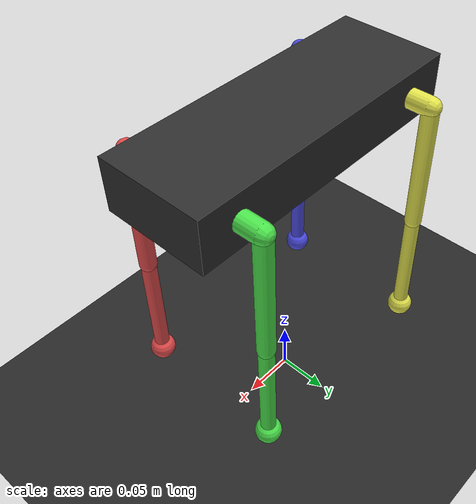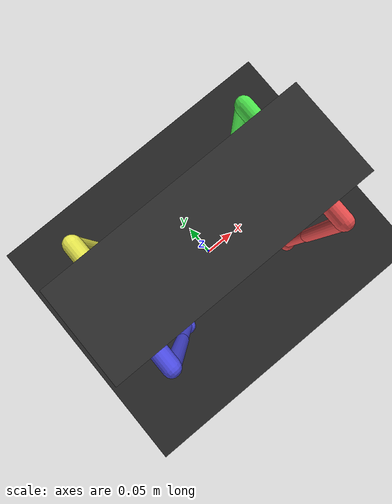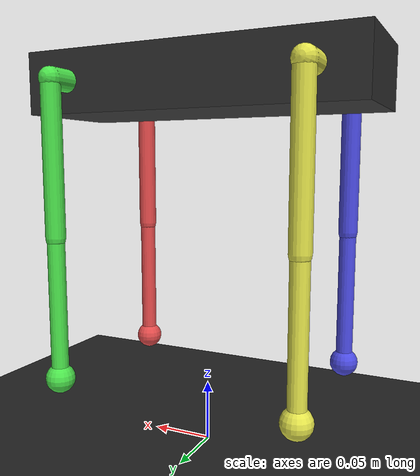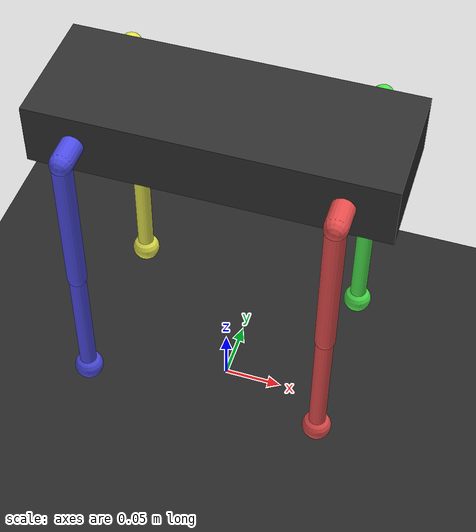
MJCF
<mujoco model="stanford_quadruped_fixed">
  <compiler angle="radian" autolimits="true"/>
  <option timestep="0.001000" integrator="RK4" gravity="0 0 -9.81"/>
  <visual>
    <headlight ambient="0.35 0.35 0.35" diffuse="0.75 0.75 0.75" specular="0.20 0.20 0.20"/>
    <map znear="0.01"/>
  </visual>
  <asset>
    <texture name="grid" type="2d" builtin="checker" rgb1="0.20 0.20 0.20" rgb2="0.10 0.10 0.10" width="512" height="512"/>
    <material name="grid" texture="grid" texrepeat="4 4" reflectance="0.15"/>
  </asset>
  <worldbody>
    <light name="sun" pos="0 0 1.8" dir="0 0 -1" directional="true"/>
    <geom name="floor" type="plane" size="3 3 0.1" material="grid" friction="1.500 0.05 0.01"/>
    <camera name="overview" pos="0.70 -1.10 0.55" xyaxes="1.0 0.0 0.0 0.0 0.6 0.8"/>
    <body name="torso" pos="0 0 0.300000">
      <geom name="torso_geom" type="box" size="0.138000 0.050000 0.025000" rgba="0.18 0.18 0.18 1"/>
      <site name="torso_center" pos="0 0 0" size="0.01" rgba="1 1 1 1"/>

    <body name="fr_abad_body" pos="0.100000 -0.040000 0.000000">
      <joint name="fr_abad" type="hinge" axis="1 0 0" range="-1.4 1.4" damping="1.049000" armature="0.019360"/>
      <geom name="fr_abad_link" type="capsule" fromto="0 0 0 0 -0.030000 0" size="0.009" rgba="0.90 0.30 0.30 1"/>
      <body name="fr_hip_body" pos="0 -0.030000 0">
        <joint name="fr_hip" type="hinge" axis="0 1 0" range="-2.5 2.5" damping="1.049000" armature="0.019360"/>
        <geom name="fr_upper_link" type="capsule" fromto="0 0 0 0 0 -0.123500" size="0.008" rgba="0.90 0.30 0.30 1"/>
        <body name="fr_knee_body" pos="0 0 -0.123500">
          <joint name="fr_knee" type="hinge" axis="0 1 0" range="-2.8 0.4" damping="1.049000" armature="0.019360"/>
          <geom name="fr_lower_link" type="capsule" fromto="0 0 0 0 0 -0.115000" size="0.007" rgba="0.90 0.30 0.30 1"/>
          <geom name="fr_foot_geom" type="sphere" pos="0 0 -0.115000" size="0.010000" rgba="0.90 0.30 0.30 1"/>
          <site name="fr_foot" pos="0 0 -0.115000" size="0.012" rgba="0.90 0.30 0.30 1"/>
        </body>
      </body>
    </body>

    <body name="fl_abad_body" pos="0.100000 0.040000 0.000000">
      <joint name="fl_abad" type="hinge" axis="1 0 0" range="-1.4 1.4" damping="1.049000" armature="0.019360"/>
      <geom name="fl_abad_link" type="capsule" fromto="0 0 0 0 0.030000 0" size="0.009" rgba="0.30 0.90 0.30 1"/>
      <body name="fl_hip_body" pos="0 0.030000 0">
        <joint name="fl_hip" type="hinge" axis="0 1 0" range="-2.5 2.5" damping="1.049000" armature="0.019360"/>
        <geom name="fl_upper_link" type="capsule" fromto="0 0 0 0 0 -0.123500" size="0.008" rgba="0.30 0.90 0.30 1"/>
        <body name="fl_knee_body" pos="0 0 -0.123500">
          <joint name="fl_knee" type="hinge" axis="0 1 0" range="-2.8 0.4" damping="1.049000" armature="0.019360"/>
          <geom name="fl_lower_link" type="capsule" fromto="0 0 0 0 0 -0.115000" size="0.007" rgba="0.30 0.90 0.30 1"/>
          <geom name="fl_foot_geom" type="sphere" pos="0 0 -0.115000" size="0.010000" rgba="0.30 0.90 0.30 1"/>
          <site name="fl_foot" pos="0 0 -0.115000" size="0.012" rgba="0.30 0.90 0.30 1"/>
        </body>
      </body>
    </body>

    <body name="br_abad_body" pos="-0.100000 -0.040000 0.000000">
      <joint name="br_abad" type="hinge" axis="1 0 0" range="-1.4 1.4" damping="1.049000" armature="0.019360"/>
      <geom name="br_abad_link" type="capsule" fromto="0 0 0 0 -0.030000 0" size="0.009" rgba="0.30 0.30 0.90 1"/>
      <body name="br_hip_body" pos="0 -0.030000 0">
        <joint name="br_hip" type="hinge" axis="0 1 0" range="-2.5 2.5" damping="1.049000" armature="0.019360"/>
        <geom name="br_upper_link" type="capsule" fromto="0 0 0 0 0 -0.123500" size="0.008" rgba="0.30 0.30 0.90 1"/>
        <body name="br_knee_body" pos="0 0 -0.123500">
          <joint name="br_knee" type="hinge" axis="0 1 0" range="-2.8 0.4" damping="1.049000" armature="0.019360"/>
          <geom name="br_lower_link" type="capsule" fromto="0 0 0 0 0 -0.115000" size="0.007" rgba="0.30 0.30 0.90 1"/>
          <geom name="br_foot_geom" type="sphere" pos="0 0 -0.115000" size="0.010000" rgba="0.30 0.30 0.90 1"/>
          <site name="br_foot" pos="0 0 -0.115000" size="0.012" rgba="0.30 0.30 0.90 1"/>
        </body>
      </body>
    </body>

    <body name="bl_abad_body" pos="-0.100000 0.040000 0.000000">
      <joint name="bl_abad" type="hinge" axis="1 0 0" range="-1.4 1.4" damping="1.049000" armature="0.019360"/>
      <geom name="bl_abad_link" type="capsule" fromto="0 0 0 0 0.030000 0" size="0.009" rgba="0.90 0.90 0.30 1"/>
      <body name="bl_hip_body" pos="0 0.030000 0">
        <joint name="bl_hip" type="hinge" axis="0 1 0" range="-2.5 2.5" damping="1.049000" armature="0.019360"/>
        <geom name="bl_upper_link" type="capsule" fromto="0 0 0 0 0 -0.123500" size="0.008" rgba="0.90 0.90 0.30 1"/>
        <body name="bl_knee_body" pos="0 0 -0.123500">
          <joint name="bl_knee" type="hinge" axis="0 1 0" range="-2.8 0.4" damping="1.049000" armature="0.019360"/>
          <geom name="bl_lower_link" type="capsule" fromto="0 0 0 0 0 -0.115000" size="0.007" rgba="0.90 0.90 0.30 1"/>
          <geom name="bl_foot_geom" type="sphere" pos="0 0 -0.115000" size="0.010000" rgba="0.90 0.90 0.30 1"/>
          <site name="bl_foot" pos="0 0 -0.115000" size="0.012" rgba="0.90 0.90 0.30 1"/>
        </body>
      </body>
    </body>

    </body>
  </worldbody>
</mujoco>
